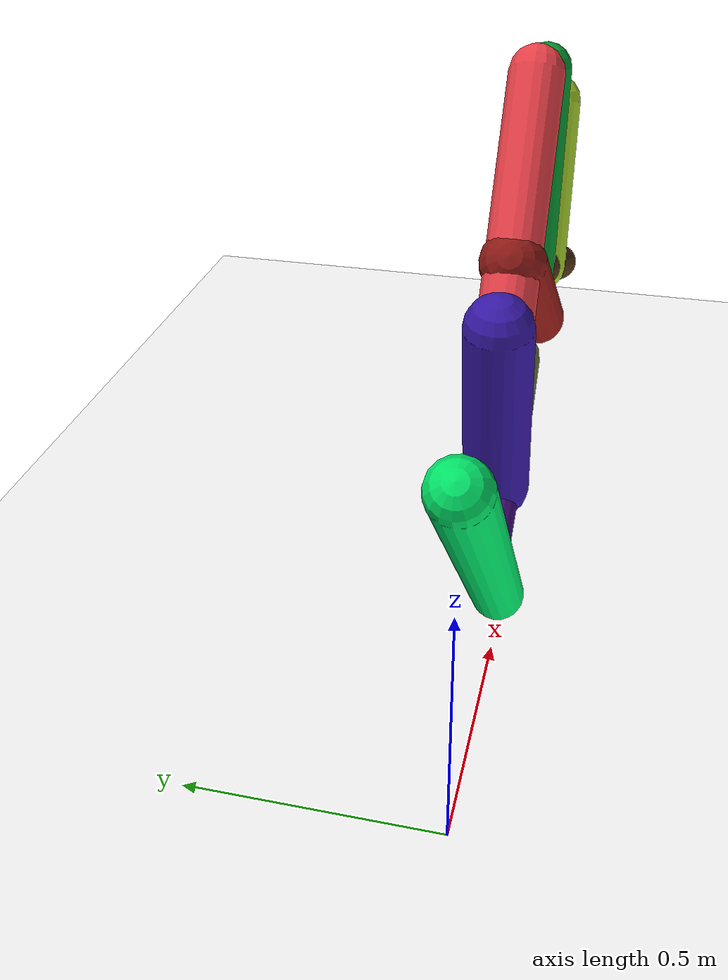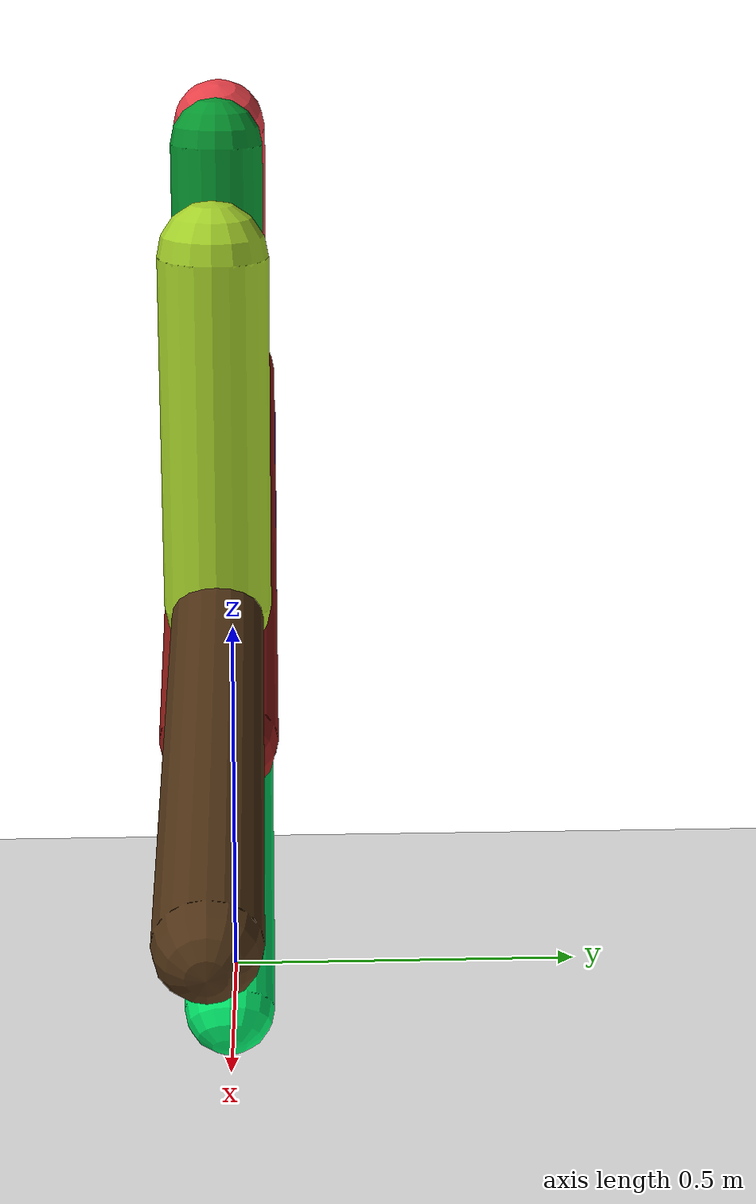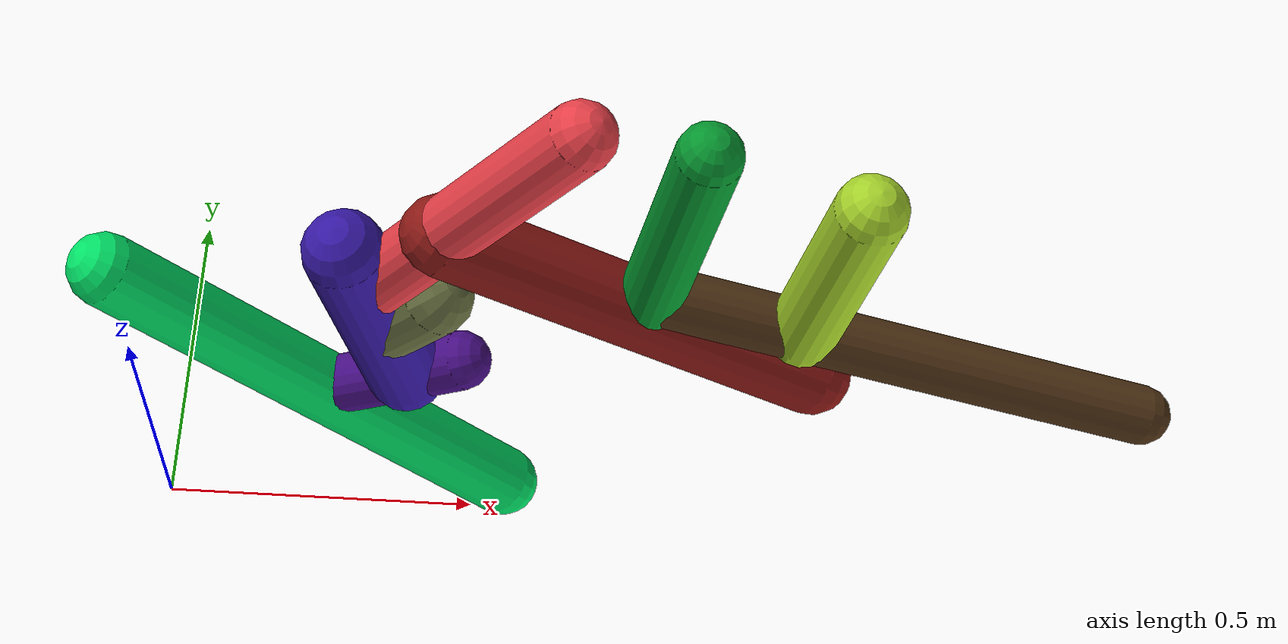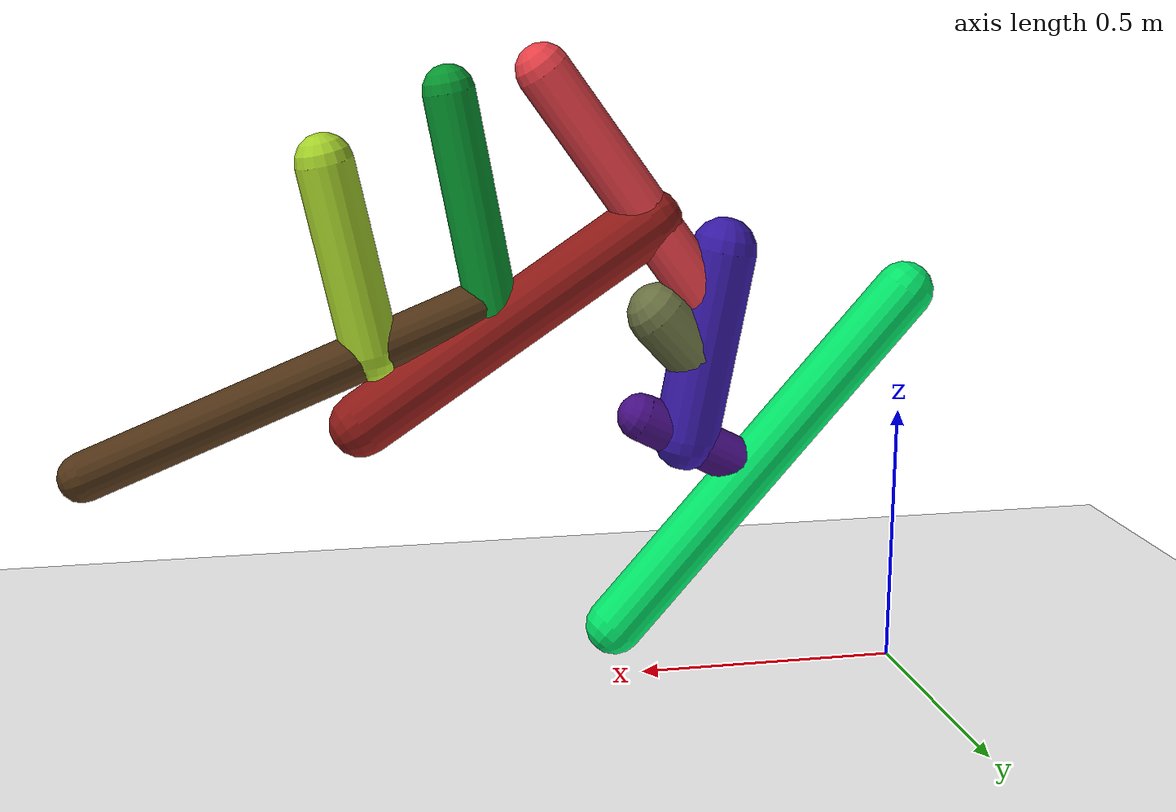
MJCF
<mujoco model="morphology">
  <option timestep="0.01"/>
  <default>
    <default class="/"/>
    <default class="0/"/>
    <default class="0/1/"/>
    <default class="0/1/2/"/>
    <default class="0/1/2/3/"/>
    <default class="0/1/2/3/4/"/>
    <default class="0/1/2/3/4/5/"/>
    <default class="0/1/2/3/4/5/6/"/>
    <default class="0/1/2/3/4/5/6/7/"/>
    <default class="0/1/2/8/"/>
  </default>
  <asset>
    <texture name="texplane" type="2d" builtin="checker" rgb1="0.10000000000000001 0.20000000000000001 0.29999999999999999" rgb2="0.20000000000000001 0.29999999999999999 0.40000000000000002" width="300" height="300"/>
    <material name="MatPlane" class="/" texture="texplane" texrepeat="20 20" specular="1" shininess="1" reflectance="0.5"/>
  </asset>
  <worldbody>
    <light name="//unnamed_light_0" class="/" directional="true" pos="0 0 1.5" dir="0 0 -1.3" cutoff="100" exponent="1" diffuse="1 1 1" specular="0.10000000000000001 0.10000000000000001 0.10000000000000001"/>
    <geom name="ground" class="/" type="plane" size="15 15 0.5" material="MatPlane" rgba="1 1 1 1"/>
    <site name="body" class="/" size="9.9999999999999995e-07 9.9999999999999995e-07 9.9999999999999995e-07" pos="0 0 0.73735705614089964"/>
    <body pos="0 0 0.73735705614089964" name="0/">
      <joint name="0/rootx/" class="/" type="slide" axis="1 0 0" limited="false" stiffness="0" armature="0" damping="0"/>
      <joint name="0/rootz/" class="/" type="slide" axis="0 0 1" limited="false" stiffness="0" armature="0" damping="0"/>
      <joint name="0/rooty/" class="/" type="hinge" axis="0 1 0" limited="false" stiffness="0" armature="0" damping="0"/>
      <geom name="0/geom" class="0/" type="capsule" contype="1" conaffinity="1" condim="3" size="0.055554045840999045" rgba="0.0040576181855573878 0.90247922886734544 0.41203304608872937 1" friction="0.59999999999999998 0.10000000000000001 0.10000000000000001" fromto="0 0 0 0.55778422971038566 0 -0.6373570312442306"/>
      <site name="0/end0" class="0/" size="0.0050000000000000001" pos="0.55778422971038566 0 -0.6373570312442306"/>
      <site name="0/attach1" class="0/" size="9.9999999999999995e-07 9.9999999999999995e-07 9.9999999999999995e-07" pos="0.29323328401659066 0 -0.33506557806385151"/>
      <body pos="0.29323328401659066 0 -0.33506557806385151" name="0/1/">
        <joint name="0/1/joint/" class="0/" type="hinge" axis="0 1 0" limited="true" range="-35.894087429080265 35.894087429080265"/>
        <geom name="0/1/geom" class="0/1/" type="capsule" contype="1" conaffinity="1" condim="3" size="0.045720540593500683" rgba="0.28538777916866465 0.058974576682132573 0.53001623238853535 1" friction="0.59999999999999998 0.10000000000000001 0.10000000000000001" fromto="0 0 0 0.21714184010675908 0 0.11082605125507594"/>
        <site name="0/1/end1" class="0/1/" size="0.0050000000000000001" pos="0.21714184010675908 0 0.11082605125507594"/>
        <site name="0/1/attach2" class="0/1/" size="9.9999999999999995e-07 9.9999999999999995e-07 9.9999999999999995e-07" pos="0.13001014525689145 0 0.066355295758920019"/>
        <body pos="0.13001014525689145 0 0.066355295758920019" name="0/1/2/">
          <joint name="0/1/2/joint/" class="0/1/" type="hinge" axis="0 1 0" limited="true" range="-39.693086694032019 39.693086694032019"/>
          <geom name="0/1/2/geom" class="0/1/2/" type="capsule" contype="1" conaffinity="1" condim="3" size="0.061945782357280266" rgba="0.2188551690230639 0.098272591656029862 0.65773936584318837 1" friction="0.59999999999999998 0.10000000000000001 0.10000000000000001" fromto="0 0 0 -0.066172551536488822 0 0.35778616773107652"/>
          <site name="0/1/2/end2" class="0/1/2/" size="0.0050000000000000001" pos="-0.066172551536488822 0 0.35778616773107652"/>
          <site name="0/1/2/attach3" class="0/1/2/" size="9.9999999999999995e-07 9.9999999999999995e-07 9.9999999999999995e-07" pos="-0.045831994868769356 0 0.24780748849506201"/>
          <body pos="-0.045831994868769356 0 0.24780748849506201" name="0/1/2/3/">
            <joint name="0/1/2/3/joint/" class="0/1/2/" type="hinge" axis="0 1 0" limited="true" range="-61.802591334500399 61.802591334500399"/>
            <geom name="0/1/2/3/geom" class="0/1/2/3/" type="capsule" contype="1" conaffinity="1" condim="3" size="0.051009037573850308" rgba="0.9237770256582144 0.25501440493191241 0.28746890973844075 1" friction="0.59999999999999998 0.10000000000000001 0.10000000000000001" fromto="0 0 0 0.32363327797470309 0 0.44638098461076225"/>
            <site name="0/1/2/3/end3" class="0/1/2/3/" size="0.0050000000000000001" pos="0.32363327797470309 0 0.44638098461076225"/>
            <site name="0/1/2/3/attach4" class="0/1/2/3/" size="9.9999999999999995e-07 9.9999999999999995e-07 9.9999999999999995e-07" pos="0.12244228634819809 0 0.16888222583332038"/>
            <body pos="0.12244228634819809 0 0.16888222583332038" name="0/1/2/3/4/">
              <joint name="0/1/2/3/4/joint/" class="0/1/2/3/" type="hinge" axis="0 1 0" limited="true" range="-36.063675809151704 36.063675809151704"/>
              <geom name="0/1/2/3/4/geom" class="0/1/2/3/4/" type="capsule" contype="1" conaffinity="1" condim="3" size="0.060124548398940783" rgba="0.56060524420236468 0.10293908333359347 0.088720758368114438 1" friction="0.59999999999999998 0.10000000000000001 0.10000000000000001" fromto="0 0 0 0.53914758435007504 0 -0.36082226989496335"/>
              <site name="0/1/2/3/4/end4" class="0/1/2/3/4/" size="0.0050000000000000001" pos="0.53914758435007504 0 -0.36082226989496335"/>
              <site name="0/1/2/3/4/attach5" class="0/1/2/3/4/" size="9.9999999999999995e-07 9.9999999999999995e-07 9.9999999999999995e-07" pos="0.28699670800073773 0 -0.19207134862347597"/>
              <body pos="0.28699670800073773 0 -0.19207134862347597" name="0/1/2/3/4/5/">
                <geom name="0/1/2/3/4/5/geom" class="0/1/2/3/4/5/" type="capsule" contype="1" conaffinity="1" condim="3" size="0.048273941875551493" rgba="0.023796090418712779 0.60121662859248015 0.19167742331438831 1" friction="0.59999999999999998 0.10000000000000001 0.10000000000000001" fromto="0 0 0 0.085225474241775734 0 0.43670925007418404"/>
                <site name="0/1/2/3/4/5/end5" class="0/1/2/3/4/5/" size="0.0050000000000000001" pos="0.085225474241775734 0 0.43670925007418404"/>
                <site name="0/1/2/3/4/5/attach6" class="0/1/2/3/4/5/" size="9.9999999999999995e-07 9.9999999999999995e-07 9.9999999999999995e-07" pos="0.010732543507358763 0 0.054995305901034561"/>
                <body pos="0.010732543507358763 0 0.054995305901034561" name="0/1/2/3/4/5/6/">
                  <joint name="0/1/2/3/4/5/6/joint/" class="0/1/2/3/4/5/" type="hinge" axis="0 1 0" limited="true" range="-38.296384708800218 38.296384708800218"/>
                  <geom name="0/1/2/3/4/5/6/geom" class="0/1/2/3/4/5/6/" type="capsule" contype="1" conaffinity="1" condim="3" size="0.045797936444625091" rgba="0.31979516369169392 0.20505990051490852 0.087210255329537301 1" friction="0.59999999999999998 0.10000000000000001 0.10000000000000001" fromto="0 0 0 0.74583675641101843 0 -0.29705530782716305"/>
                  <site name="0/1/2/3/4/5/6/end6" class="0/1/2/3/4/5/6/" size="0.0050000000000000001" pos="0.74583675641101843 0 -0.29705530782716305"/>
                  <site name="0/1/2/3/4/5/6/attach7" class="0/1/2/3/4/5/6/" size="9.9999999999999995e-07 9.9999999999999995e-07 9.9999999999999995e-07" pos="0.22133551082794842 0 -0.088154529442157792"/>
                  <body pos="0.22133551082794842 0 -0.088154529442157792" name="0/1/2/3/4/5/6/7/">
                    <joint name="0/1/2/3/4/5/6/7/joint/" class="0/1/2/3/4/5/6/" type="hinge" axis="0 1 0" limited="true" range="-39.286729082169693 39.286729082169693"/>
                    <geom name="0/1/2/3/4/5/6/7/geom" class="0/1/2/3/4/5/6/7/" type="capsule" contype="1" conaffinity="1" condim="3" size="0.053827795241964529" rgba="0.6573658052691147 0.83478375517325187 0.16735445772531665 1" friction="0.59999999999999998 0.10000000000000001 0.10000000000000001" fromto="0 0 0 0.077020887396840987 0 0.34790470061934364"/>
                    <site name="0/1/2/3/4/5/6/7/end7" class="0/1/2/3/4/5/6/7/" size="0.0050000000000000001" pos="0.077020887396840987 0 0.34790470061934364"/>
                  </body>
                </body>
              </body>
            </body>
          </body>
          <site name="0/1/2/attach8" class="0/1/2/" size="9.9999999999999995e-07 9.9999999999999995e-07 9.9999999999999995e-07" pos="-0.027810557399544814 0 0.15036797770993493"/>
          <body pos="-0.027810557399544814 0 0.15036797770993493" name="0/1/2/8/">
            <joint name="0/1/2/8/joint/" class="0/1/2/" type="hinge" axis="0 1 0" limited="true" range="-69.700903047856073 69.700903047856073"/>
            <geom name="0/1/2/8/geom" class="0/1/2/8/" type="capsule" contype="1" conaffinity="1" condim="3" size="0.060371307674580758" rgba="0.41674571334303778 0.44733387765446775 0.25823776091978623 1" friction="0.59999999999999998 0.10000000000000001 0.10000000000000001" fromto="0 0 0 0.083764130228362044 0 0.090365028178273521"/>
            <site name="0/1/2/8/end8" class="0/1/2/8/" size="0.0050000000000000001" pos="0.083764130228362044 0 0.090365028178273521"/>
          </body>
        </body>
      </body>
      <camera name="0/side" class="0/" mode="trackcom" pos="0.40000000000000002 -4 0.20000000000000001" quat="0.70699999999999996 0.70699999999999996 0 0"/>
    </body>
  </worldbody>
  <actuator>
    <motor name="0/1/motor" class="0/1/" ctrllimited="true" ctrlrange="-1 1" gear="80" joint="0/1/joint/"/>
    <motor name="0/1/2/motor" class="0/1/2/" ctrllimited="true" ctrlrange="-1 1" gear="83" joint="0/1/2/joint/"/>
    <motor name="0/1/2/3/motor" class="0/1/2/3/" ctrllimited="true" ctrlrange="-1 1" gear="77" joint="0/1/2/3/joint/"/>
    <motor name="0/1/2/3/4/motor" class="0/1/2/3/4/" ctrllimited="true" ctrlrange="-1 1" gear="74" joint="0/1/2/3/4/joint/"/>
    <motor name="0/1/2/3/4/5/6/motor" class="0/1/2/3/4/5/6/" ctrllimited="true" ctrlrange="-1 1" gear="74" joint="0/1/2/3/4/5/6/joint/"/>
    <motor name="0/1/2/3/4/5/6/7/motor" class="0/1/2/3/4/5/6/7/" ctrllimited="true" ctrlrange="-1 1" gear="60" joint="0/1/2/3/4/5/6/7/joint/"/>
    <motor name="0/1/2/8/motor" class="0/1/2/8/" ctrllimited="true" ctrlrange="-1 1" gear="50" joint="0/1/2/8/joint/"/>
  </actuator>
  <sensor>
    <subtreelinvel name="velocity" body="0/"/>
  </sensor>
</mujoco>
